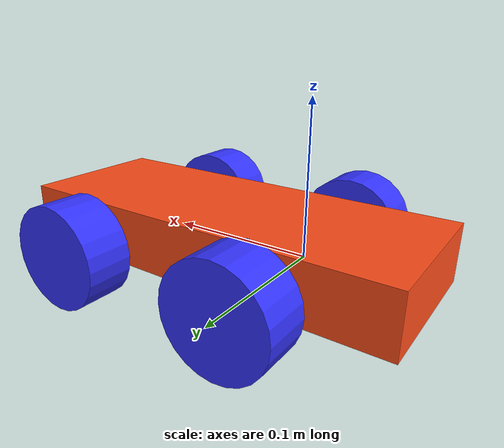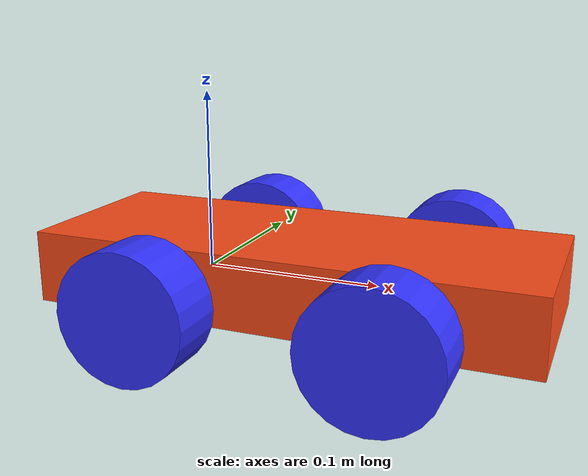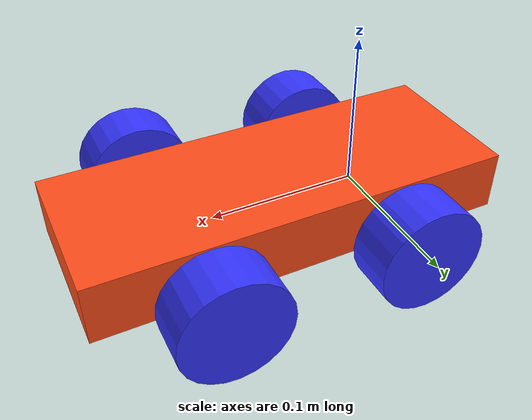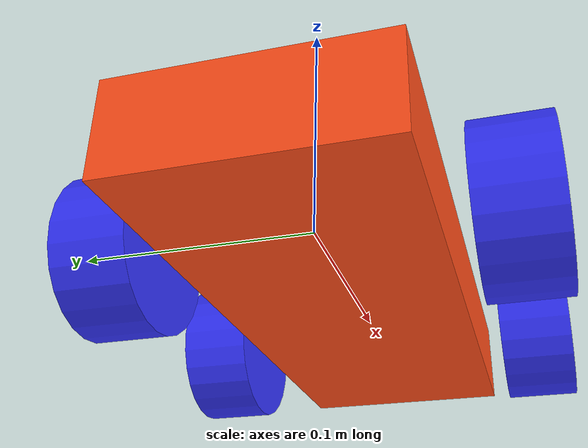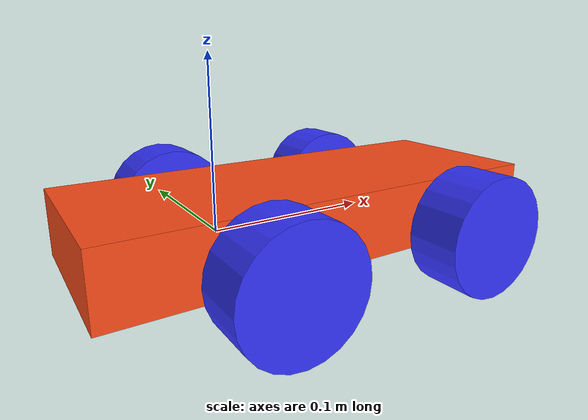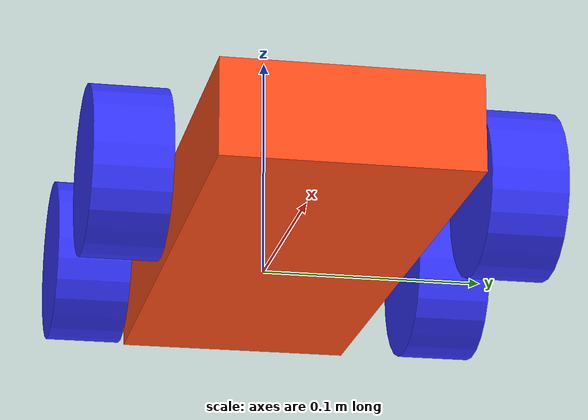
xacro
<?xml version="1.0"?>
<robot xmlns:xacro="http://www.ros.org/wiki/xacro"  name="robot">

    <xacro:arg name="use_ros2_control" default="true"/>
    <xacro:arg name="sim_mode" default="false"/>

    <xacro:include filename="robot_core.xacro" />

    <xacro:if value="$(arg use_ros2_control)">
        <xacro:include filename="ros2_control.xacro" />
    </xacro:if>
    <xacro:unless value="$(arg use_ros2_control)">
        <xacro:include filename="gazebo_control.xacro" />
    </xacro:unless>

</robot>

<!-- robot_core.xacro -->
<robot xmlns:xacro="http://www.ros.org/wiki/xacro" >

    <xacro:include filename="inertial_macros.xacro"/>

    <xacro:property name="chassis_length" value="0.275"/>
    <xacro:property name="chassis_width" value="0.105"/>
    <xacro:property name="chassis_height" value="0.04"/>
    <xacro:property name="chassis_mass" value="1.0"/>
    <xacro:property name="wheel_radius" value="0.035"/>
    <xacro:property name="wheel_thickness" value="0.032"/>
    <xacro:property name="wheel_mass" value="0.05"/>

    <xacro:property name="wheel_offset_x" value="0.08"/>
    <xacro:property name="wheel_offset_y" value="0.08"/>
    <xacro:property name="wheel_offset_z" value="0.015"/>

    <xacro:property name="front_wheel_offset_x" value="0.125"/>
    <xacro:property name="front_wheel_offset_y" value="0.08"/>
    <xacro:property name="front_wheel_offset_z" value="0.015"/>

    <xacro:property name="caster_wheel_radius" value="0.01"/>
    <xacro:property name="caster_wheel_mass" value="0.01"/>
    <xacro:property name="caster_wheel_offset_x" value="0.075"/>
    <xacro:property name="caster_wheel_offset_z" value="${wheel_offset_z - wheel_radius + caster_wheel_radius}"/>

    <material name="white">
        <color rgba="1 1 1 1" />
    </material>

    <material name="orange">
        <color rgba="1 0.3 0.1 1"/>
    </material>

    <material name="blue">
        <color rgba="0.2 0.2 1 1"/>
    </material>

    <material name="black">
        <color rgba="0 0 0 1"/>
    </material>

    <material name="red">
        <color rgba="1 0 0 1"/>
    </material>

    <!-- BASE LINK -->

    <link name="base_link">

    </link>

    <!-- BASE_FOOTPRINT LINK -->

    <joint name="base_footprint_joint" type="fixed">
        <parent link="base_link"/>
        <child link="base_footprint"/>
        <origin xyz="0 0 0" rpy="0 0 0"/>
    </joint>

    <link name="base_footprint">
    </link>

    <!-- CHASSIS LINK -->

    <joint name="chassis_joint" type="fixed">
        <parent link="base_link"/>
        <child link="chassis"/>
        <origin xyz="${-wheel_offset_x} 0 ${-wheel_offset_z}"/>
    </joint>

    <link name="chassis">
        <visual>
            <origin xyz="${chassis_length/2} 0 ${chassis_height/2}"/>
            <geometry>
                <box size="${chassis_length} ${chassis_width} ${chassis_height}"/>
            </geometry>
            <material name="orange"/>
        </visual>
        <collision>
            <origin xyz="${chassis_length/2} 0 ${chassis_height/2}"/>
            <geometry>
                <box size="${chassis_length} ${chassis_width} ${chassis_height}"/>
            </geometry>
        </collision>
        <xacro:inertial_box mass="0.5" x="${chassis_length}" y="${chassis_width}" z="${chassis_height}">
            <origin xyz="${chassis_length/2} 0 ${chassis_height/2}" rpy="0 0 0"/>
        </xacro:inertial_box>
    </link>

    <gazebo reference="chassis">
        <material>Gazebo/Orange</material>
    </gazebo>

    <!-- LEFT WHEEL LINK -->

    <joint name="left_wheel_joint" type="continuous">
        <parent link="base_link"/>
        <child link="left_wheel"/>
        <origin xyz="0 ${wheel_offset_y} 0" rpy="-${pi/2} 0 0" />
        <axis xyz="0 0 1"/>
    </joint>

    <link name="left_wheel">
        <visual>
            <geometry>
                <cylinder radius="${wheel_radius}" length="${wheel_thickness}"/>
            </geometry>
            <material name="blue"/>
        </visual>
        <collision>
            <geometry>
                <sphere radius="${wheel_radius}"/>
            </geometry>
        </collision>
        <xacro:inertial_cylinder mass="${wheel_mass}" length="${wheel_thickness}" radius="${wheel_radius}">
            <origin xyz="0 0 0" rpy="0 0 0"/>
        </xacro:inertial_cylinder>
    </link>

    <gazebo reference="left_wheel">
        <material>Gazebo/Blue</material>
    </gazebo>

    <!-- LEFT Front WHEEL LINK -->

    <joint name="left_front_wheel_joint" type="fixed">
        <parent link="base_link"/>
        <child link="left_front_wheel"/>
        <origin xyz="${front_wheel_offset_x} ${wheel_offset_y} 0" rpy="-${pi/2} 0 0" />
        <axis xyz="0 0 1"/>
    </joint>

    <link name="left_front_wheel">
        <visual>
            <geometry>
                <cylinder radius="${wheel_radius}" length="${wheel_thickness}"/>
            </geometry>
            <material name="blue"/>
        </visual>
        <collision>
            <geometry>
                <sphere radius="${wheel_radius}"/>
            </geometry>
        </collision>
        <xacro:inertial_cylinder mass="${wheel_mass}" length="${wheel_thickness}" radius="${wheel_radius}">
            <origin xyz="0 0 0" rpy="0 0 0"/>
        </xacro:inertial_cylinder>
    </link>

    <gazebo reference="left_front_wheel">
        <material>Gazebo/Blue</material>
        <mu1 value="0.001"/>
        <mu2 value="0.001"/>
    </gazebo>

    <!-- RIGHT WHEEL LINK -->

    <joint name="right_wheel_joint" type="continuous">
        <parent link="base_link"/>
        <child link="right_wheel"/>
        <origin xyz="0 ${-wheel_offset_y} 0" rpy="${pi/2} 0 0" />
        <axis xyz="0 0 -1"/>
    </joint>

    <link name="right_wheel">
        <visual>
            <geometry>
                <cylinder radius="${wheel_radius}" length="${wheel_thickness}"/>
            </geometry>
            <material name="blue"/>
        </visual>
        <collision>
            <geometry>
                <sphere radius="${wheel_radius}"/>
            </geometry>
        </collision>
        <xacro:inertial_cylinder mass="${wheel_mass}" length="${wheel_thickness}" radius="${wheel_radius}">
            <origin xyz="0 0 0" rpy="0 0 0"/>
        </xacro:inertial_cylinder>
    </link>

    <gazebo reference="right_wheel">
        <material>Gazebo/Blue</material>
    </gazebo>

    <!-- RIGHT FRONT WHEEL LINK -->

    <joint name="right_front_wheel_joint" type="fixed">
        <parent link="base_link"/>
        <child link="right_front_wheel"/>
        <origin xyz="${front_wheel_offset_x} ${-front_wheel_offset_y} 0" rpy="${pi/2} 0 0" />
        <axis xyz="0 0 -1"/>
    </joint>

    <link name="right_front_wheel">
        <visual>
            <geometry>
                <cylinder radius="${wheel_radius}" length="${wheel_thickness}"/>
            </geometry>
            <material name="blue"/>
        </visual>
        <collision>
            <geometry>
                <sphere radius="${wheel_radius}"/>
            </geometry>
        </collision>
        <xacro:inertial_cylinder mass="${wheel_mass}" length="${wheel_thickness}" radius="${wheel_radius}">
            <origin xyz="0 0 0" rpy="0 0 0"/>
        </xacro:inertial_cylinder>
    </link>

    <gazebo reference="right_front_wheel">
        <material>Gazebo/Blue</material>
        <mu1 value="0.001"/>
        <mu2 value="0.001"/>
    </gazebo>

    <!-- CASTER WHEEL LINK -->

</robot>
